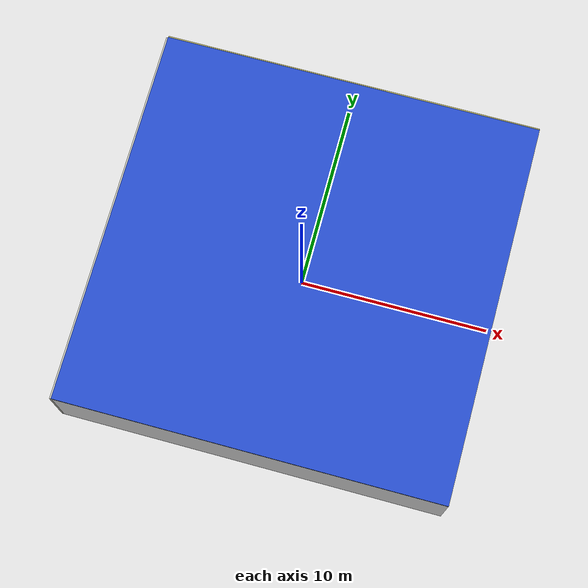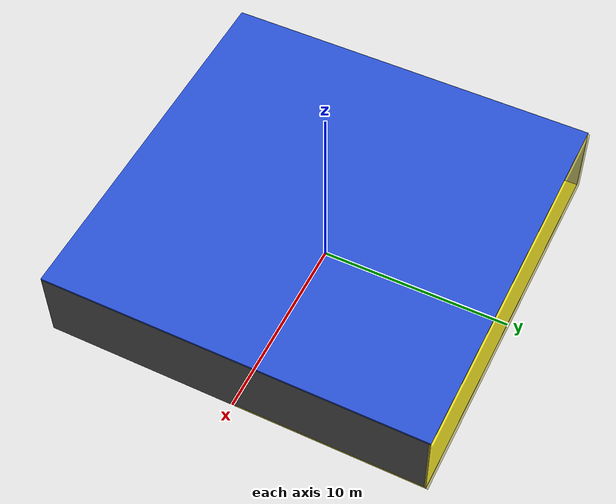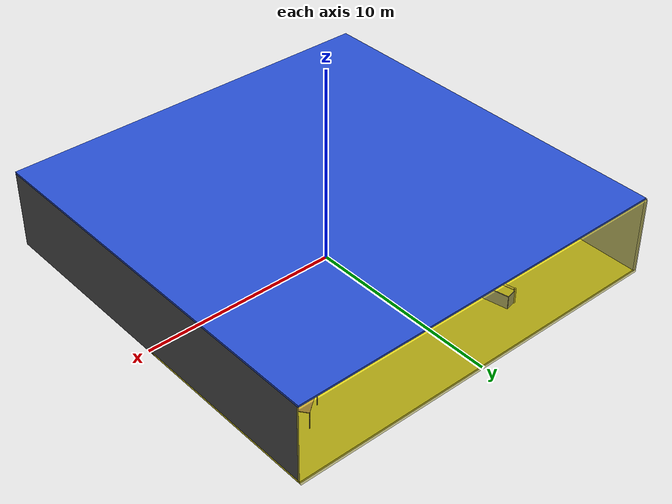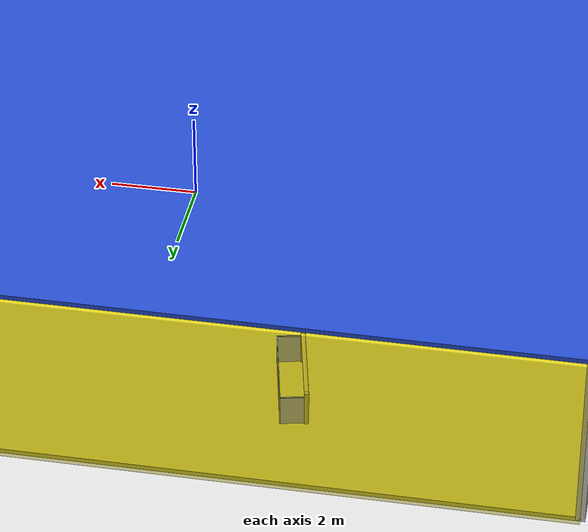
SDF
<sdf version="1.4">
 <world name="default">
  <physics type="ode">
   <max_step_size>0.001</max_step_size>
   <real_time_factor>1</real_time_factor>
   <real_time_update_rate>1000</real_time_update_rate>
   <gravity>0 0 -9.8</gravity>
  </physics>
  <scene><ambient>0.4 0.4 0.4 1</ambient><background>0.7 0.7 0.7 1</background><shadows>1</shadows></scene>
  <model name="Surrounding">
   <static>1</static>
   <link name="Ceiling">
    <collision name="Ceiling_Collision"><geometry><box><size>20 20 0.1</size></box></geometry></collision>
    <visual name="Ceiling_Visual">
     <geometry><box><size>20 20 0.1</size></box></geometry>
     <material>
      <script><uri>file://media/materials/scripts/gazebo.material</uri><name>Gazebo/BlueLaser</name></script>
     </material>
    </visual>
    <pose>0 0 4.05 0 0 0</pose>
   </link>
   <link name="Wall_South">
    <collision name="Wall_South_Collision">
     <geometry><box><size>20 0 4</size></box></geometry>
     <pose>0 0 2 0 -0 0</pose>
    </collision>
    <visual name="Wall_South_Visual">
     <pose>0 0 2 0 -0 0</pose>
     <geometry><box><size>20 0 4</size></box></geometry>
     <material>
      <script><uri>file://media/materials/scripts/gazebo.material</uri><name>Gazebo/PioneerBody</name></script>
     </material>
    </visual>
    <velocity_decay><linear>0</linear><angular>0</angular></velocity_decay>
    <pose>0 -10 0 0 -0 0</pose>
   </link>
   <link name="Wall_East">
    <collision name="Wall_21_Collision">
     <geometry><box><size>20 0 4</size></box></geometry>
     <pose>0 0 2 0 -0 0</pose>
    </collision>
    <visual name="Wall_21_Visual">
     <pose>0 0 2 0 -0 0</pose>
     <geometry><box><size>20 0 4</size></box></geometry>
     <material>
      <script><uri>file://media/materials/scripts/gazebo.material</uri><name>Gazebo/Road</name></script>
     </material>
    </visual>
    <velocity_decay><linear>0</linear><angular>0</angular></velocity_decay>
    <pose>10 0 0 0 -0 1.5708</pose>
   </link>
   <link name="Wall_North">
    <collision name="Wall_22_Collision">
     <geometry><box><size>20 0.2 4</size></box></geometry>
     <pose>0 0 2 0 -0 0</pose>
    </collision>
    <visual name="Wall_22_Visual">
     <pose>0 0 2 0 -0 0</pose>
     <geometry><box><size>20 0.2 4</size></box></geometry>
     <material>
      <script>
       <uri>file://media/materials/scripts/gazebo.material</uri>
       <name>Gazebo/YellowTransparent</name>
      </script>
     </material>
    </visual>
    <velocity_decay><linear>0</linear><angular>0</angular></velocity_decay>
    <pose>0 10 0 0 -0 0</pose>
   </link>
   <link name="Wall_West">
    <collision name="Wall_23_Collision">
     <geometry><box><size>20 0.2 4</size></box></geometry>
     <pose>0 0 2 0 -0 0</pose>
    </collision>
    <visual name="Wall_23_Visual">
     <pose>0 0 2 0 -0 0</pose>
     <geometry><box><size>20 0.2 4</size></box></geometry>
     <material>
      <script><uri>file://media/materials/scripts/gazebo.material</uri><name>Gazebo/PaintedWall</name></script>
     </material>
    </visual>
    <velocity_decay><linear>0</linear><angular>0</angular></velocity_decay>
    <pose>-10 0 0 0 0 -1.5708</pose>
   </link>
   <link name="Ground_link">
    <collision name="collision">
     <pose>0 0 .05 0 -0 0</pose>
     <geometry><box><size>20 20 0.1</size></box></geometry>
    </collision>
    <visual name="visual">
     <pose>0 0 .05 0 -0 0</pose>
     <geometry><box><size>20 20 0.1</size></box></geometry>
     <material>
      <script><uri>file://media/materials/scripts/gazebo.material</uri><name>Gazebo/YellowGlow</name></script>
     </material>
    </visual>
   </link>
   <static>1</static>
  </model>
  <spherical_coordinates>
   <surface_model>EARTH_WGS84</surface_model>
   <latitude_deg>0</latitude_deg>
   <longitude_deg>0</longitude_deg>
   <elevation>0</elevation>
   <heading_deg>0</heading_deg>
  </spherical_coordinates>
  <light name="lightball_0" type="diffuse">
   <diffuse>0.8 0.8 0.8 1</diffuse>
   <specular>0.2 0.2 0.2 1</specular>
   <attenuation>
    <range>100</range>
    <constant>0.7</constant>
    <linear>0.01</linear>
    <quadratic>0.001</quadratic>
   </attenuation>
   <direction>-0.5 0.1 -0.9</direction>
   <pose>-8.2367790828 -9.48721184608 1.46770322389 0 0 0</pose>
  </light>
  <light name="lightball_1" type="diffuse">
   <diffuse>0.8 0.8 0.8 1</diffuse>
   <specular>0.2 0.2 0.2 1</specular>
   <attenuation>
    <range>100</range>
    <constant>0.7</constant>
    <linear>0.01</linear>
    <quadratic>0.001</quadratic>
   </attenuation>
   <direction>-0.5 0.1 -0.9</direction>
   <pose>2.00243973463 -9.93408638213 3.43106162131 0 0 0</pose>
  </light>
  <light name="lightball_2" type="diffuse">
   <diffuse>0.8 0.8 0.8 1</diffuse>
   <specular>0.2 0.2 0.2 1</specular>
   <attenuation>
    <range>100</range>
    <constant>0.7</constant>
    <linear>0.01</linear>
    <quadratic>0.001</quadratic>
   </attenuation>
   <direction>-0.5 0.1 -0.9</direction>
   <pose>8.51168161979 -3.34275640941 2.60787990556 0 0 0</pose>
  </light>
  <light name="lightball_3" type="diffuse">
   <diffuse>0.8 0.8 0.8 1</diffuse>
   <specular>0.2 0.2 0.2 1</specular>
   <attenuation>
    <range>100</range>
    <constant>0.7</constant>
    <linear>0.01</linear>
    <quadratic>0.001</quadratic>
   </attenuation>
   <direction>-0.5 0.1 -0.9</direction>
   <pose>7.72426652741 -5.85944608985 2.97896684125 0 0 0</pose>
  </light>
  <light name="lightball_4" type="diffuse">
   <diffuse>0.8 0.8 0.8 1</diffuse>
   <specular>0.2 0.2 0.2 1</specular>
   <attenuation>
    <range>100</range>
    <constant>0.7</constant>
    <linear>0.01</linear>
    <quadratic>0.001</quadratic>
   </attenuation>
   <direction>-0.5 0.1 -0.9</direction>
   <pose>3.06010025102 7.216709739 1.03052419009 0 0 0</pose>
  </light>
  <include>
   <uri>model://textured_shapes</uri>
   <pose>-7.98641941461 -6.95271081651 0 0 0 0.472834663684</pose>
  </include>
  <include><uri>model://cabinet</uri><pose>-4.35926029278 -0.711973078863 0 0 0 1.51546986527</pose></include>
  <include>
   <uri>model://robocup_3Dsim_goal</uri>
   <pose>-3.84343898546 7.00538904026 0 0 0 0.211254799843</pose>
  </include>
  <include><uri>model://table</uri><pose>3.95287230993 -1.17917243732 0 0 0 1.61978945506</pose></include>
  <include>
   <uri>model://textured_shapes</uri>
   <pose>7.59832026333 -4.4985508956 0 0 0 1.82109443224</pose>
  </include>
  <include><uri>model://table</uri><pose>7.53658898276 7.34848038217 0 0 0 0.648150013658</pose></include>
 </world>
</sdf>

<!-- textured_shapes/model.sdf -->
<sdf version="1.6">
  <model name="textured_shapes">
    <pose>0 0 0.5 0 0 0</pose>
    <link name="box">
      <pose>0 -1.5 0 0 0 0</pose>
      <collision name="collision">
        <geometry>
          <box>
            <size>1 1 1</size>
          </box>
        </geometry>
      </collision>
      <visual name="visual">
        <geometry>
          <box>
            <size>1 1 1</size>
          </box>
        </geometry>
        <material>
          <script>
            <uri>model://../model_source/models/textured_shapes/materials/scripts</uri>
            <uri>model://../model_source/models/textured_shapes/materials/textures</uri>
            <name>TexturedShape/Squares</name>
          </script>
        </material>
      </visual>
    </link>
    <link name="sphere">
      <collision name="collision">
        <geometry>
          <sphere>
            <radius>0.5</radius>
          </sphere>
        </geometry>
      </collision>
      <visual name="visual">
        <geometry>
          <sphere>
            <radius>0.5</radius>
          </sphere>
        </geometry>
        <material>
          <script>
            <uri>model://../model_source/models/textured_shapes/materials/scripts</uri>
            <uri>model://../model_source/models/textured_shapes/materials/textures</uri>
            <name>TexturedShape/Squares</name>
          </script>
        </material>
      </visual>
    </link>
    <link name="cylinder">
      <pose>0 1.5 0 0 0 0</pose>
      <collision name="collision">
        <geometry>
          <cylinder>
            <radius>0.5</radius>
            <length>1</length>
          </cylinder>
        </geometry>
      </collision>
      <visual name="visual">
        <geometry>
          <cylinder>
            <radius>0.5</radius>
            <length>1</length>
          </cylinder>
        </geometry>
        <material>
          <script>
            <uri>model://../model_source/models/textured_shapes/materials/scripts</uri>
            <uri>model://../model_source/models/textured_shapes/materials/textures</uri>
            <name>TexturedShape/Squares</name>
          </script>
        </material>
      </visual>
    </link>
  </model>
</sdf>

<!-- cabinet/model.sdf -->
<sdf version="1.5">
  <model name="cabinet">
    <static>true</static>
    <link name="cabinet_bottom_plate">
      <inertial>
        <pose>0 0 -1 0 0 0</pose>
        <inertia>
          <ixx>2.050000</ixx>
          <ixy>0</ixy>
          <ixz>0</ixz>
          <iyy>2.050000</iyy>
          <iyz>0</iyz>
          <izz>2.050000</izz>
        </inertia>
        <mass>25.000000</mass>
      </inertial>
      <collision name="cabinet_bottom_plate_geom">
        <pose>0 0 0.010000 0 0 0</pose>
        <geometry>
          <box>
            <size>0.450000 0.450000 0.020000</size>
          </box>
        </geometry>
      </collision>
      <visual name="cabinet_bottom_plate_geom_visual">
        <pose>0 0 0.010000 0 0 0</pose>
        <geometry>
          <box>
            <size>0.450000 0.450000 0.020000</size>
          </box>
        </geometry>
        <material>
          <script>
            <uri>model://media/materials/scripts/gazebo.material</uri>
            <name>Gazebo/Wood</name>
          </script>
        </material>
      </visual>
      <collision name="cabinet_bottom_plate_geom_cabinet_back_plate">
        <pose>0.235000 0 0.510000 0 0 0</pose>
        <geometry>
          <box>
            <size>0.020000 0.450000 1.020000</size>
          </box>
        </geometry>
      </collision>
      <visual name="cabinet_bottom_plate_geom_cabinet_back_plate_visual">
        <pose>0.235000 0 0.510000 0 0 0</pose>
        <geometry>
          <box>
            <size>0.020000 0.450000 1.020000</size>
          </box>
        </geometry>
        <material>
          <script>
            <uri>model://media/materials/scripts/gazebo.material</uri>
            <name>Gazebo/Wood</name>
          </script>
        </material>
      </visual>
      <collision name="cabinet_bottom_plate_geom_cabinet_left_plate">
        <pose>0 0.235000 0.510000 0 0 0</pose>
        <geometry>
          <box>
            <size>0.450000 0.020000 1.020000</size>
          </box>
        </geometry>
      </collision>
      <visual name="cabinet_bottom_plate_geom_cabinet_left_plate_visual">
        <pose>0 0.235000 0.510000 0 0 0</pose>
        <geometry>
          <box>
            <size>0.450000 0.020000 1.020000</size>
          </box>
        </geometry>
        <material>
          <script>
            <uri>model://media/materials/scripts/gazebo.material</uri>
            <name>Gazebo/Wood</name>
          </script>
        </material>
      </visual>
      <collision name="cabinet_bottom_plate_geom_cabinet_middle_plate">
        <pose>0 0 0.510000 0 0 0</pose>
        <geometry>
          <box>
            <size>0.450000 0.450000 0.020000</size>
          </box>
        </geometry>
      </collision>
      <visual name="cabinet_bottom_plate_geom_cabinet_middle_plate_visual">
        <pose>0 0 0.510000 0 0 0</pose>
        <geometry>
          <box>
            <size>0.450000 0.450000 0.020000</size>
          </box>
        </geometry>
        <material>
          <script>
            <uri>model://media/materials/scripts/gazebo.material</uri>
            <name>Gazebo/Wood</name>
          </script>
        </material>
      </visual>
      <collision name="cabinet_bottom_plate_geom_cabinet_right_plate">
        <pose>0 -0.235000 0.510000 0 0 0</pose>
        <geometry>
          <box>
            <size>0.450000 0.020000 1.020000</size>
          </box>
        </geometry>
      </collision>
      <visual name="cabinet_bottom_plate_geom_cabinet_right_plate_visual">
        <pose>0 -0.235000 0.510000 0 0 0</pose>
        <geometry>
          <box>
            <size>0.450000 0.020000 1.020000</size>
          </box>
        </geometry>
        <material>
          <script>
            <uri>model://media/materials/scripts/gazebo.material</uri>
            <name>Gazebo/Wood</name>
          </script>
        </material>
      </visual>
      <collision name="cabinet_bottom_plate_geom_cabinet_top_plate">
        <pose>0 0 1.010000 0 0 0</pose>
        <geometry>
          <box>
            <size>0.450000 0.450000 0.020000</size>
          </box>
        </geometry>
      </collision>
      <visual name="cabinet_bottom_plate_geom_cabinet_top_plate_visual">
        <pose>0 0 1.010000 0 0 0</pose>
        <geometry>
          <box>
            <size>0.450000 0.450000 0.020000</size>
          </box>
        </geometry>
        <material>
          <script>
            <uri>model://media/materials/scripts/gazebo.material</uri>
            <name>Gazebo/Wood</name>
          </script>
        </material>
      </visual>
    </link>
  </model>
</sdf>

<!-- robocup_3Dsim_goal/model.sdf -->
<sdf version="1.5">
  <model name="robocup_3d_goal">
    <static>true</static>
    <link name="left_post">
      <pose>0 1.05 0.45 0 0 0</pose>
      <collision name="collision">
        <geometry>
          <cylinder>
            <radius>0.05</radius>
            <length>0.9</length>
          </cylinder>
        </geometry>
      </collision>
      <visual name="visual">
        <geometry>
          <cylinder>
            <radius>0.05</radius>
            <length>0.9</length>
          </cylinder>
        </geometry>
        <material>
          <script>
            <uri>file://media/materials/scripts/gazebo.material</uri>
            <name>Gazebo/ZincYellow</name>
          </script>
        </material>
      </visual>
    </link>
    <link name="left_support_horiz_lower">
      <pose>0.30 1.05 0.01 0 0 0</pose>
      <collision name="collision">
        <geometry>
          <box>
            <size>0.50 0.02 0.02</size>
          </box>
        </geometry>
      </collision>
      <visual name="visual">
        <geometry>
          <box>
            <size>0.50 0.02 0.02</size>
          </box>
        </geometry>
        <material>
          <script>
            <uri>file://media/materials/scripts/gazebo.material</uri>
            <name>Gazebo/White</name>
          </script>
        </material>
      </visual>
    </link>
    <link name="left_support_horiz_upper">
      <pose>0.30 1.05 0.79 0 0 0</pose>
      <collision name="collision">
        <geometry>
          <box>
            <size>0.50 0.02 0.02</size>
          </box>
        </geometry>
      </collision>
      <visual name="visual">
        <geometry>
          <box>
            <size>0.50 0.02 0.02</size>
          </box>
        </geometry>
        <material>
          <script>
            <uri>file://media/materials/scripts/gazebo.material</uri>
            <name>Gazebo/White</name>
          </script>
        </material>
      </visual>
    </link>
    <link name="left_support_vertical">
      <pose>0.56 1.05 0.4 0 1.5708 0</pose>
      <collision name="collision">
        <geometry>
          <box>
            <size>0.80 0.02 0.02</size>
          </box>
        </geometry>
      </collision>
      <visual name="visual">
        <geometry>
          <box>
            <size>0.80 0.02 0.02</size>
          </box>
        </geometry>
        <material>
          <script>
            <uri>file://media/materials/scripts/gazebo.material</uri>
            <name>Gazebo/White</name>
          </script>
        </material>
      </visual>
    </link>
    <link name="right_support_horiz_lower">
      <pose>0.30 -1.05 0.01 0 0 0</pose>
      <collision name="collision">
        <geometry>
          <box>
            <size>0.50 0.02 0.02</size>
          </box>
        </geometry>
      </collision>
      <visual name="visual">
        <geometry>
          <box>
            <size>0.50 0.02 0.02</size>
          </box>
        </geometry>
        <material>
          <script>
            <uri>file://media/materials/scripts/gazebo.material</uri>
            <name>Gazebo/White</name>
          </script>
        </material>
      </visual>
    </link>
    <link name="right_support_horiz_upper">
      <pose>0.30 -1.05 0.79 0 0 0</pose>
      <collision name="collision">
        <geometry>
          <box>
            <size>0.50 0.02 0.02</size>
          </box>
        </geometry>
      </collision>
      <visual name="visual">
        <geometry>
          <box>
            <size>0.50 0.02 0.02</size>
          </box>
        </geometry>
        <material>
          <script>
            <uri>file://media/materials/scripts/gazebo.material</uri>
            <name>Gazebo/White</name>
          </script>
        </material>
      </visual>
    </link>
    <link name="right_support_vertical">
      <pose>0.56 -1.05 0.4 0 1.5708 0</pose>
      <collision name="collision">
        <geometry>
          <box>
            <size>0.80 0.02 0.02</size>
          </box>
        </geometry>
      </collision>
      <visual name="visual">
        <geometry>
          <box>
            <size>0.80 0.02 0.02</size>
          </box>
        </geometry>
        <material>
          <script>
            <uri>file://media/materials/scripts/gazebo.material</uri>
            <name>Gazebo/White</name>
          </script>
        </material>
      </visual>
    </link>
    <link name="center_support_horiz_lower">
      <pose>0.56 0 0.01 0 1.5708 0</pose>
      <collision name="collision">
        <geometry>
          <box>
            <size>0.02 2.08 0.02</size>
          </box>
        </geometry>
      </collision>
      <visual name="visual">
        <geometry>
          <box>
            <size>0.02 2.08 0.02</size>
          </box>
        </geometry>
        <material>
          <script>
            <uri>file://media/materials/scripts/gazebo.material</uri>
            <name>Gazebo/White</name>
          </script>
        </material>
      </visual>
    </link>
    <link name="center_support_horiz_upper">
      <pose>0.56 0 0.79 0 1.5708 0</pose>
      <collision name="collision">
        <geometry>
          <box>
            <size>0.02 2.08 0.02</size>
          </box>
        </geometry>
      </collision>
      <visual name="visual">
        <geometry>
          <box>
            <size>0.02 2.08 0.02</size>
          </box>
        </geometry>
        <material>
          <script>
            <uri>file://media/materials/scripts/gazebo.material</uri>
            <name>Gazebo/White</name>
          </script>
        </material>
      </visual>
    </link>
    <link name="right_post">
      <pose>0 -1.05 0.45 0 0 0</pose>
      <collision name="collision">
        <geometry>
          <cylinder>
            <radius>0.05</radius>
            <length>0.9</length>
          </cylinder>
        </geometry>
      </collision>
      <visual name="visual">
        <geometry>
          <cylinder>
            <radius>0.05</radius>
            <length>0.9</length>
          </cylinder>
        </geometry>
        <material>
          <script>
            <uri>file://media/materials/scripts/gazebo.material</uri>
            <name>Gazebo/ZincYellow</name>
          </script>
        </material>
      </visual>
    </link>
    <link name="crossbar">
      <pose>0 0 0.85 1.57 1.57 0</pose>
      <collision name="collision">
        <geometry>
          <cylinder>
            <radius>0.05</radius>
            <length>2.0</length>
          </cylinder>
        </geometry>
      </collision>
      <visual name="visual">
        <geometry>
          <cylinder>
            <radius>0.05</radius>
            <length>2.0</length>
          </cylinder>
        </geometry>
        <material>
          <script>
            <uri>file://media/materials/scripts/gazebo.material</uri>
            <name>Gazebo/ZincYellow</name>
          </script>
        </material>
      </visual>
    </link>
    <link name="center_net">
      <pose>0.56 0 0.40 0 0 0</pose>
      <collision name="collision">
        <geometry>
          <box>
            <size>0.01 2.1 0.80</size>
          </box>
        </geometry>
      </collision>
      <visual name="visual">
        <geometry>
          <box>
            <size>0.01 2.1 0.80</size>
          </box>
        </geometry>
        <material>
          <script>
            <uri>model://../model_source/models/robocup09_spl_field/materials/scripts/</uri>
            <uri>model://../model_source/models/robocup09_spl_field/materials/textures/</uri>
            <name>RoboCup/Net</name>
          </script>
        </material>
      </visual>
    </link>
    <link name="left_net">
      <pose>0.30 1.05 0.40 0 0 0</pose>
      <collision name="collision">
        <geometry>
          <box>
            <size>0.50 0.01 0.76</size>
          </box>
        </geometry>
      </collision>
      <visual name="visual">
        <geometry>
          <box>
            <size>0.50 0.01 0.76</size>
          </box>
        </geometry>
        <material>
          <script>
            <uri>model://../model_source/models/robocup09_spl_field/materials/scripts/</uri>
            <uri>model://../model_source/models/robocup09_spl_field/materials/textures/</uri>
            <name>RoboCup/Net</name>
          </script>
        </material>
      </visual>
    </link>
    <link name="right_net">
      <pose>0.30 -1.05 0.40 0 0 0</pose>
      <collision name="collision">
        <geometry>
          <box>
            <size>0.50 0.01 0.76</size>
          </box>
        </geometry>
      </collision>
      <visual name="visual">
        <geometry>
          <box>
            <size>0.50 0.01 0.76</size>
          </box>
        </geometry>
        <material>
          <script>
            <uri>model://../model_source/models/robocup09_spl_field/materials/scripts/</uri>
            <uri>model://../model_source/models/robocup09_spl_field/materials/textures/</uri>
            <name>RoboCup/Net</name>
          </script>
        </material>
      </visual>
    </link>
  </model>
</sdf>

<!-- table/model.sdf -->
<sdf version="1.5">
  <model name="table">
    <static>true</static>
    <link name="link">
      <collision name="surface">
        <pose>0 0 1.0 0 0 0</pose>
        <geometry>
          <box>
            <size>1.5 0.8 0.03</size>
          </box>
        </geometry>
        <surface>
          <friction>
            <ode>
              <mu>0.6</mu>
              <mu2>0.6</mu2>
            </ode>
          </friction>
        </surface>
      </collision>
      <visual name="visual1">
        <pose>0 0 1.0 0 0 0</pose>
        <geometry>
          <box>
            <size>1.5 0.8 0.03</size>
          </box>
        </geometry>
        <material>
          <script>
            <uri>model://media/materials/scripts/gazebo.material</uri>
            <name>Gazebo/Wood</name>
          </script>
        </material>
      </visual>
      <collision name="front_left_leg">
        <pose>0.68 0.38 0.5 0 0 0</pose>
        <geometry>
          <cylinder>
            <radius>0.02</radius>
            <length>1.0</length>
          </cylinder>
        </geometry>
      </collision>
      <visual name="front_left_leg">
        <pose>0.68 0.38 0.5 0 0 0</pose>
        <geometry>
          <cylinder>
            <radius>0.02</radius>
            <length>1.0</length>
          </cylinder>
        </geometry>
        <material>
          <script>
            <uri>model://media/materials/scripts/gazebo.material</uri>
            <name>Gazebo/Grey</name>
          </script>
        </material>
      </visual>
      <collision name="front_right_leg">
        <pose>0.68 -0.38 0.5 0 0 0</pose>
        <geometry>
          <cylinder>
            <radius>0.02</radius>
            <length>1.0</length>
          </cylinder>
        </geometry>
      </collision>
      <visual name="front_right_leg">
        <pose>0.68 -0.38 0.5 0 0 0</pose>
        <geometry>
          <cylinder>
            <radius>0.02</radius>
            <length>1.0</length>
          </cylinder>
        </geometry>
        <material>
          <script>
            <uri>model://media/materials/scripts/gazebo.material</uri>
            <name>Gazebo/Grey</name>
          </script>
        </material>
      </visual>
      <collision name="back_right_leg">
        <pose>-0.68 -0.38 0.5 0 0 0</pose>
        <geometry>
          <cylinder>
            <radius>0.02</radius>
            <length>1.0</length>
          </cylinder>
        </geometry>
      </collision>
      <visual name="back_right_leg">
        <pose>-0.68 -0.38 0.5 0 0 0</pose>
        <geometry>
          <cylinder>
            <radius>0.02</radius>
            <length>1.0</length>
          </cylinder>
        </geometry>
        <material>
          <script>
            <uri>model://media/materials/scripts/gazebo.material</uri>
            <name>Gazebo/Grey</name>
          </script>
        </material>
      </visual>
      <collision name="back_left_leg">
        <pose>-0.68 0.38 0.5 0 0 0</pose>
        <geometry>
          <cylinder>
            <radius>0.02</radius>
            <length>1.0</length>
          </cylinder>
        </geometry>
      </collision>
      <visual name="back_left_leg">
        <pose>-0.68 0.38 0.5 0 0 0</pose>
        <geometry>
          <cylinder>
            <radius>0.02</radius>
            <length>1.0</length>
          </cylinder>
        </geometry>
        <material>
          <script>
            <uri>model://media/materials/scripts/gazebo.material</uri>
            <name>Gazebo/Grey</name>
          </script>
        </material>
      </visual>
    </link>
  </model>
</sdf>
